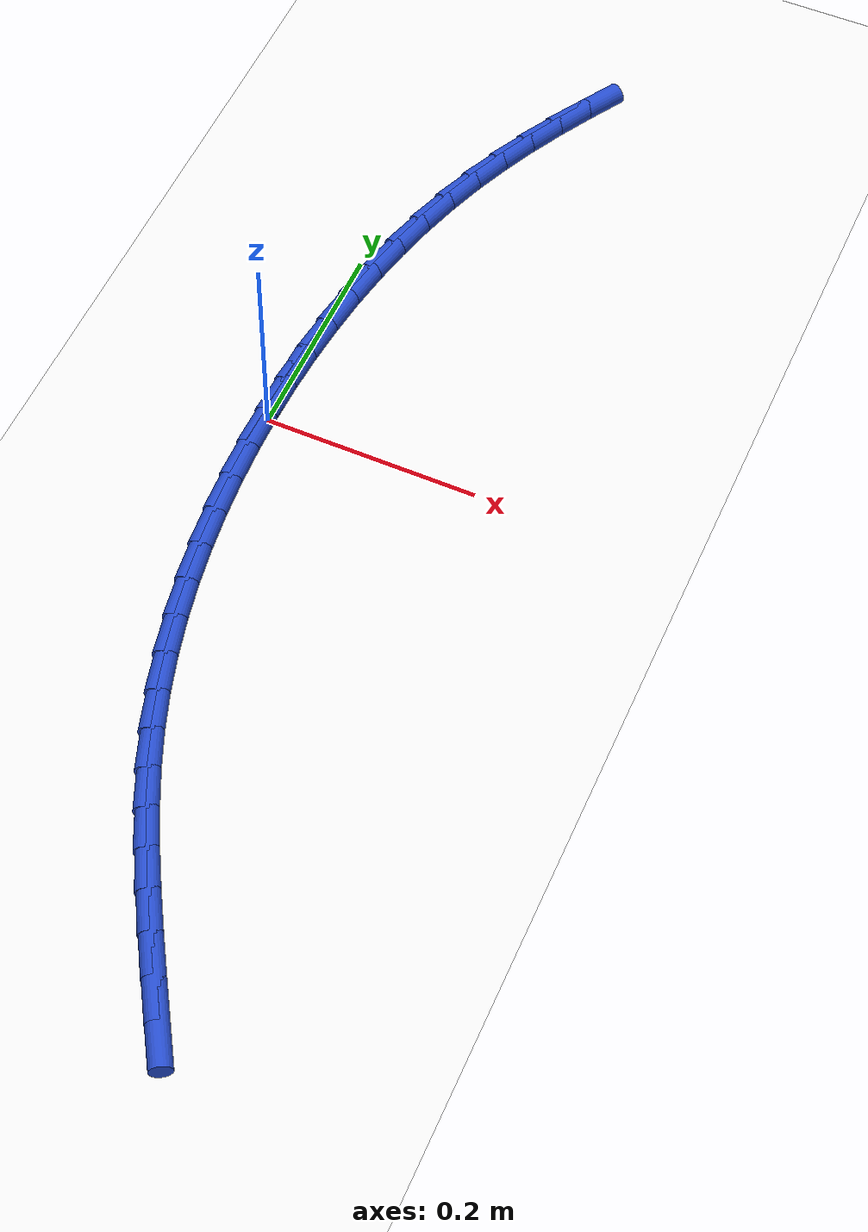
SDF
<sdf version="1.6">
 <world name="default">
  <model name="ground_plane">
   <static>1</static>
   <link name="link">
    <collision name="collision">
     <geometry><plane><normal>0 0 1</normal><size>100 100</size></plane></geometry>
     <surface><friction><ode><mu>100</mu><mu2>50</mu2></ode></friction></surface>
    </collision>
    <visual name="visual">
     <cast_shadows>0</cast_shadows>
     <geometry><plane><normal>0 0 1</normal><size>100 100</size></plane></geometry>
     <material>
      <script><uri>file://media/materials/scripts/gazebo.material</uri><name>Gazebo/WhiteGlow</name></script>
     </material>
    </visual>
   </link>
  </model>
  <model name="line">
   <link name="link_0">
    <pose>-3.469446951953614e-18 4.163336342344337e-17 0.01 0 1.57 1.5526658345678408</pose>
    <collision name="collision">
     <geometry><cylinder><radius>0.01</radius><length>0.08</length></cylinder></geometry>
    </collision>
    <visual name="visual">
     <material>
      <script><name>Gazebo/Blue</name><uri>file://media/materials/scripts/gazebo.material</uri></script>
     </material>
     <geometry><cylinder><radius>0.01</radius><length>0.08</length></cylinder></geometry>
    </visual>
   </link>
   <link name="link_1">
    <pose>0.000692005057310479 0.03816384149387917 0.01 0 1.57 1.517928954553385</pose>
    <collision name="collision">
     <geometry><cylinder><radius>0.01</radius><length>0.08</length></cylinder></geometry>
    </collision>
    <visual name="visual">
     <material>
      <script><name>Gazebo/Blue</name><uri>file://media/materials/scripts/gazebo.material</uri></script>
     </material>
     <geometry><cylinder><radius>0.01</radius><length>0.08</length></cylinder></geometry>
    </visual>
   </link>
   <link name="link_2">
    <pose>0.002705376215841676 0.07621178979032595 0.01 0 1.57 1.4820772021216293</pose>
    <collision name="collision">
     <geometry><cylinder><radius>0.01</radius><length>0.08</length></cylinder></geometry>
    </collision>
    <visual name="visual">
     <material>
      <script><name>Gazebo/Blue</name><uri>file://media/materials/scripts/gazebo.material</uri></script>
     </material>
     <geometry><cylinder><radius>0.01</radius><length>0.08</length></cylinder></geometry>
    </visual>
   </link>
   <link name="link_3">
    <pose>0.006070062355582308 0.11403738385729371 0.01 0 1.57 1.4448962398728415</pose>
    <collision name="collision">
     <geometry><cylinder><radius>0.01</radius><length>0.08</length></cylinder></geometry>
    </collision>
    <visual name="visual">
     <material>
      <script><name>Gazebo/Blue</name><uri>file://media/materials/scripts/gazebo.material</uri></script>
     </material>
     <geometry><cylinder><radius>0.01</radius><length>0.08</length></cylinder></geometry>
    </visual>
   </link>
   <link name="link_4">
    <pose>0.010816012356521092 0.15153416266273562 0.01 0 1.57 1.4061663035214347</pose>
    <collision name="collision">
     <geometry><cylinder><radius>0.01</radius><length>0.08</length></cylinder></geometry>
    </collision>
    <visual name="visual">
     <material>
      <script><name>Gazebo/Blue</name><uri>file://media/materials/scripts/gazebo.material</uri></script>
     </material>
     <geometry><cylinder><radius>0.01</radius><length>0.08</length></cylinder></geometry>
    </visual>
   </link>
   <link name="link_5">
    <pose>0.016973175098646744 0.18859566517460494 0.01 0 1.57 1.365662337383973</pose>
    <collision name="collision">
     <geometry><cylinder><radius>0.01</radius><length>0.08</length></cylinder></geometry>
    </collision>
    <visual name="visual">
     <material>
      <script><name>Gazebo/Blue</name><uri>file://media/materials/scripts/gazebo.material</uri></script>
     </material>
     <geometry><cylinder><radius>0.01</radius><length>0.08</length></cylinder></geometry>
    </visual>
   </link>
   <link name="link_6">
    <pose>0.024571499461947983 0.22511543036085488 0.01 0 1.57 1.323155215370519</pose>
    <collision name="collision">
     <geometry><cylinder><radius>0.01</radius><length>0.08</length></cylinder></geometry>
    </collision>
    <visual name="visual">
     <material>
      <script><name>Gazebo/Blue</name><uri>file://media/materials/scripts/gazebo.material</uri></script>
     </material>
     <geometry><cylinder><radius>0.01</radius><length>0.08</length></cylinder></geometry>
    </visual>
   </link>
   <link name="link_7">
    <pose>0.03364093432641353 0.26098699718943874 0.01 0 1.57 1.2784143873026845</pose>
    <collision name="collision">
     <geometry><cylinder><radius>0.01</radius><length>0.08</length></cylinder></geometry>
    </collision>
    <visual name="visual">
     <material>
      <script><name>Gazebo/Blue</name><uri>file://media/materials/scripts/gazebo.material</uri></script>
     </material>
     <geometry><cylinder><radius>0.01</radius><length>0.08</length></cylinder></geometry>
    </visual>
   </link>
   <link name="link_8">
    <pose>0.04421142857203211 0.2961039046283098 0.01 0 1.57 1.2312176223736868</pose>
    <collision name="collision">
     <geometry><cylinder><radius>0.01</radius><length>0.08</length></cylinder></geometry>
    </collision>
    <visual name="visual">
     <material>
      <script><name>Gazebo/Blue</name><uri>file://media/materials/scripts/gazebo.material</uri></script>
     </material>
     <geometry><cylinder><radius>0.01</radius><length>0.08</length></cylinder></geometry>
    </visual>
   </link>
   <link name="link_9">
    <pose>0.05631279495881954 0.3303598798198596 0.01 0 1.57 1.1831923428890632</pose>
    <collision name="collision">
     <geometry><cylinder><radius>0.01</radius><length>0.08</length></cylinder></geometry>
    </collision>
    <visual name="visual">
     <material>
      <script><name>Gazebo/Blue</name><uri>file://media/materials/scripts/gazebo.material</uri></script>
     </material>
     <geometry><cylinder><radius>0.01</radius><length>0.08</length></cylinder></geometry>
    </visual>
   </link>
   <link name="link_10">
    <pose>0.06992902338415596 0.36371199616832356 0.01 0 1.57 1.1390213783947292</pose>
    <collision name="collision">
     <geometry><cylinder><radius>0.01</radius><length>0.08</length></cylinder></geometry>
    </collision>
    <visual name="visual">
     <material>
      <script><name>Gazebo/Blue</name><uri>file://media/materials/scripts/gazebo.material</uri></script>
     </material>
     <geometry><cylinder><radius>0.01</radius><length>0.08</length></cylinder></geometry>
    </visual>
   </link>
   <link name="link_11">
    <pose>0.08493192024140475 0.39627241135707675 0.01 0 1.57 1.0998427410901814</pose>
    <collision name="collision">
     <geometry><cylinder><radius>0.01</radius><length>0.08</length></cylinder></geometry>
    </collision>
    <visual name="visual">
     <material>
      <script><name>Gazebo/Blue</name><uri>file://media/materials/scripts/gazebo.material</uri></script>
     </material>
     <geometry><cylinder><radius>0.01</radius><length>0.08</length></cylinder></geometry>
    </visual>
   </link>
   <link name="link_12">
    <pose>0.10117644096385396 0.4281765781075573 0.01 0 1.57 1.0659921203746021</pose>
    <collision name="collision">
     <geometry><cylinder><radius>0.01</radius><length>0.08</length></cylinder></geometry>
    </collision>
    <visual name="visual">
     <material>
      <script><name>Gazebo/Blue</name><uri>file://media/materials/scripts/gazebo.material</uri></script>
     </material>
     <geometry><cylinder><radius>0.01</radius><length>0.08</length></cylinder></geometry>
    </visual>
   </link>
   <link name="link_13">
    <pose>0.11851754098479163 0.4595599491412029 0.01 0 1.57 1.0376713300870664</pose>
    <collision name="collision">
     <geometry><cylinder><radius>0.01</radius><length>0.08</length></cylinder></geometry>
    </collision>
    <visual name="visual">
     <material>
      <script><name>Gazebo/Blue</name><uri>file://media/materials/scripts/gazebo.material</uri></script>
     </material>
     <geometry><cylinder><radius>0.01</radius><length>0.08</length></cylinder></geometry>
    </visual>
   </link>
   <link name="link_174">
    <pose>0.17698618957775958 -0.5574994817957954 0.01 0 1.57 -1.0282772766854087</pose>
    <collision name="collision">
     <geometry><cylinder><radius>0.01</radius><length>0.08</length></cylinder></geometry>
    </collision>
    <visual name="visual">
     <material>
      <script><name>Gazebo/Blue</name><uri>file://media/materials/scripts/gazebo.material</uri></script>
     </material>
     <geometry><cylinder><radius>0.01</radius><length>0.08</length></cylinder></geometry>
    </visual>
   </link>
   <link name="link_175">
    <pose>0.15716132808610134 -0.5246147414103243 0.01 0 1.57 -1.0338774239147641</pose>
    <collision name="collision">
     <geometry><cylinder><radius>0.01</radius><length>0.08</length></cylinder></geometry>
    </collision>
    <visual name="visual">
     <material>
      <script><name>Gazebo/Blue</name><uri>file://media/materials/scripts/gazebo.material</uri></script>
     </material>
     <geometry><cylinder><radius>0.01</radius><length>0.08</length></cylinder></geometry>
    </visual>
   </link>
   <link name="link_176">
    <pose>0.13792245428745387 -0.4922940335062289 0.01 0 1.57 -1.0470445721941337</pose>
    <collision name="collision">
     <geometry><cylinder><radius>0.01</radius><length>0.08</length></cylinder></geometry>
    </collision>
    <visual name="visual">
     <material>
      <script><name>Gazebo/Blue</name><uri>file://media/materials/scripts/gazebo.material</uri></script>
     </material>
     <geometry><cylinder><radius>0.01</radius><length>0.08</length></cylinder></geometry>
    </visual>
   </link>
   <link name="link_177">
    <pose>0.11943594738415668 -0.4602857734883065 0.01 0 1.57 -1.0680326020680377</pose>
    <collision name="collision">
     <geometry><cylinder><radius>0.01</radius><length>0.08</length></cylinder></geometry>
    </collision>
    <visual name="visual">
     <material>
      <script><name>Gazebo/Blue</name><uri>file://media/materials/scripts/gazebo.material</uri></script>
     </material>
     <geometry><cylinder><radius>0.01</radius><length>0.08</length></cylinder></geometry>
    </visual>
   </link>
   <link name="link_178">
    <pose>0.10186818657854928 -0.42833837676135433 0.01 0 1.57 -1.096906820626575</pose>
    <collision name="collision">
     <geometry><cylinder><radius>0.01</radius><length>0.08</length></cylinder></geometry>
    </collision>
    <visual name="visual">
     <material>
      <script><name>Gazebo/Blue</name><uri>file://media/materials/scripts/gazebo.material</uri></script>
     </material>
     <geometry><cylinder><radius>0.01</radius><length>0.08</length></cylinder></geometry>
    </visual>
   </link>
   <link name="link_179">
    <pose>0.08538555107297144 -0.39620025873017023 0.01 0 1.57 -1.133490549481474</pose>
    <collision name="collision">
     <geometry><cylinder><radius>0.01</radius><length>0.08</length></cylinder></geometry>
    </collision>
    <visual name="visual">
     <material>
      <script><name>Gazebo/Blue</name><uri>file://media/materials/scripts/gazebo.material</uri></script>
     </material>
     <geometry><cylinder><radius>0.01</radius><length>0.08</length></cylinder></geometry>
    </visual>
   </link>
   <link name="link_180">
    <pose>0.07015442006976193 -0.3636198347995501 0.01 0 1.57 -1.1773131898399</pose>
    <collision name="collision">
     <geometry><cylinder><radius>0.01</radius><length>0.08</length></cylinder></geometry>
    </collision>
    <visual name="visual">
     <material>
      <script><name>Gazebo/Blue</name><uri>file://media/materials/scripts/gazebo.material</uri></script>
     </material>
     <geometry><cylinder><radius>0.01</radius><length>0.08</length></cylinder></geometry>
    </visual>
   </link>
   <link name="link_181">
    <pose>0.056341172771260585 -0.3303455203742918 0.01 0 1.57 -1.226743266221264</pose>
    <collision name="collision">
     <geometry><cylinder><radius>0.01</radius><length>0.08</length></cylinder></geometry>
    </collision>
    <visual name="visual">
     <material>
      <script><name>Gazebo/Blue</name><uri>file://media/materials/scripts/gazebo.material</uri></script>
     </material>
     <geometry><cylinder><radius>0.01</radius><length>0.08</length></cylinder></geometry>
    </visual>
   </link>
   <link name="link_182">
    <pose>0.04409267124481293 -0.29616082576203956 0.01 0 1.57 -1.2755919684105348</pose>
    <collision name="collision">
     <geometry><cylinder><radius>0.01</radius><length>0.08</length></cylinder></geometry>
    </collision>
    <visual name="visual">
     <material>
      <script><name>Gazebo/Blue</name><uri>file://media/materials/scripts/gazebo.material</uri></script>
     </material>
     <geometry><cylinder><radius>0.01</radius><length>0.08</length></cylinder></geometry>
    </visual>
   </link>
   <link name="link_183">
    <pose>0.03342584427312041 -0.26108290191506045 0.01 0 1.57 -1.3217102125494748</pose>
    <collision name="collision">
     <geometry><cylinder><radius>0.01</radius><length>0.08</length></cylinder></geometry>
    </collision>
    <visual name="visual">
     <material>
      <script><name>Gazebo/Blue</name><uri>file://media/materials/scripts/gazebo.material</uri></script>
     </material>
     <geometry><cylinder><radius>0.01</radius><length>0.08</length></cylinder></geometry>
    </visual>
   </link>
   <link name="link_184">
    <pose>0.024304547639371444 -0.22522433345261678 0.01 0 1.57 -1.365337625364739</pose>
    <collision name="collision">
     <geometry><cylinder><radius>0.01</radius><length>0.08</length></cylinder></geometry>
    </collision>
    <visual name="visual">
     <material>
      <script><name>Gazebo/Blue</name><uri>file://media/materials/scripts/gazebo.material</uri></script>
     </material>
     <geometry><cylinder><radius>0.01</radius><length>0.08</length></cylinder></geometry>
    </visual>
   </link>
   <link name="link_185">
    <pose>0.016692479469750103 -0.18869798848625846 0.01 0 1.57 -1.4067254055159468</pose>
    <collision name="collision">
     <geometry><cylinder><radius>0.01</radius><length>0.08</length></cylinder></geometry>
    </collision>
    <visual name="visual">
     <material>
      <script><name>Gazebo/Blue</name><uri>file://media/materials/scripts/gazebo.material</uri></script>
     </material>
     <geometry><cylinder><radius>0.01</radius><length>0.08</length></cylinder></geometry>
    </visual>
   </link>
   <link name="link_186">
    <pose>0.010553337890440566 -0.15161673512753643 0.01 0 1.57 -1.4461237041858368</pose>
    <collision name="collision">
     <geometry><cylinder><radius>0.01</radius><length>0.08</length></cylinder></geometry>
    </collision>
    <visual name="visual">
     <material>
      <script><name>Gazebo/Blue</name><uri>file://media/materials/scripts/gazebo.material</uri></script>
     </material>
     <geometry><cylinder><radius>0.01</radius><length>0.08</length></cylinder></geometry>
    </visual>
   </link>
   <link name="link_187">
    <pose>0.005850821027626634 -0.11409344148799899 0.01 0 1.57 -1.4837780887439387</pose>
    <collision name="collision">
     <geometry><cylinder><radius>0.01</radius><length>0.08</length></cylinder></geometry>
    </collision>
    <visual name="visual">
     <material>
      <script><name>Gazebo/Blue</name><uri>file://media/materials/scripts/gazebo.material</uri></script>
     </material>
     <geometry><cylinder><radius>0.01</radius><length>0.08</length></cylinder></geometry>
    </visual>
   </link>
   <link name="link_188">
    <pose>0.0025486270074925187 -0.0762409756791971 0.01 0 1.57 -1.5199278320074527</pose>
    <collision name="collision">
     <geometry><cylinder><radius>0.01</radius><length>0.08</length></cylinder></geometry>
    </collision>
    <visual name="visual">
     <material>
      <script><name>Gazebo/Blue</name><uri>file://media/materials/scripts/gazebo.material</uri></script>
     </material>
     <geometry><cylinder><radius>0.01</radius><length>0.08</length></cylinder></geometry>
    </visual>
   </link>
   <link name="link_189">
    <pose>0.0006104539562222832 -0.03817220581268069 0.01 0 1.57 -1.5548055840403143</pose>
    <collision name="collision">
     <geometry><cylinder><radius>0.01</radius><length>0.08</length></cylinder></geometry>
    </collision>
    <visual name="visual">
     <material>
      <script><name>Gazebo/Blue</name><uri>file://media/materials/scripts/gazebo.material</uri></script>
     </material>
     <geometry><cylinder><radius>0.01</radius><length>0.08</length></cylinder></geometry>
    </visual>
   </link>
   <link name="link_190">
    <pose>-9.540979117872439e-18 2.3592239273284576e-16 0.01 0 1.57 1.5529545678826886</pose>
    <collision name="collision">
     <geometry><cylinder><radius>0.01</radius><length>0.08</length></cylinder></geometry>
    </collision>
    <visual name="visual">
     <material>
      <script><name>Gazebo/Blue</name><uri>file://media/materials/scripts/gazebo.material</uri></script>
     </material>
     <geometry><cylinder><radius>0.01</radius><length>0.08</length></cylinder></geometry>
    </visual>
   </link>
   <link name="link_191">
    <pose>0.0006809632650097066 0.038162773647295624 0.01 0 1.57 1.5529545678826888</pose>
    <collision name="collision">
     <geometry><cylinder><radius>0.01</radius><length>0.08</length></cylinder></geometry>
    </collision>
    <visual name="visual">
     <material>
      <script><name>Gazebo/Blue</name><uri>file://media/materials/scripts/gazebo.material</uri></script>
     </material>
     <geometry><cylinder><radius>0.01</radius><length>0.08</length></cylinder></geometry>
    </visual>
   </link>
  </model>
 </world>
</sdf>
